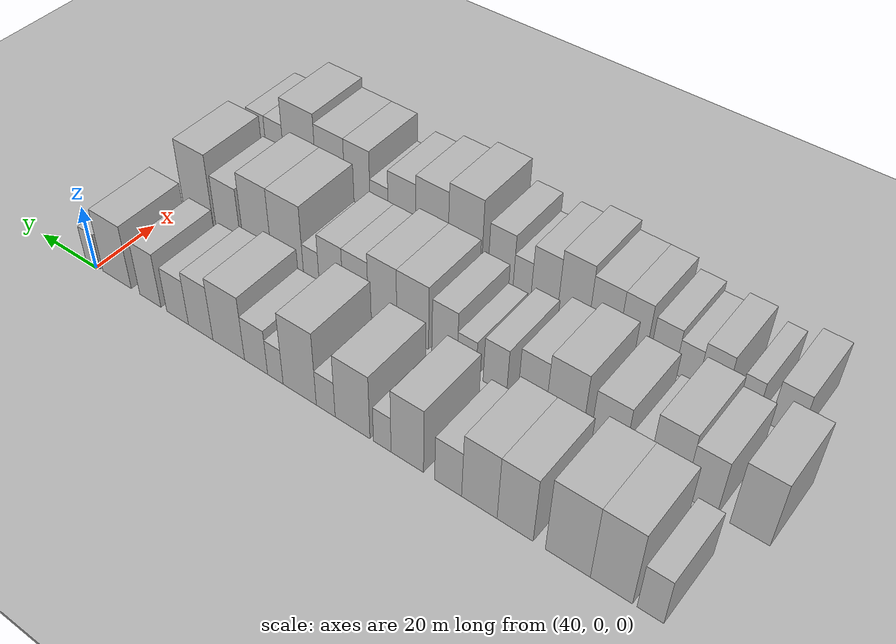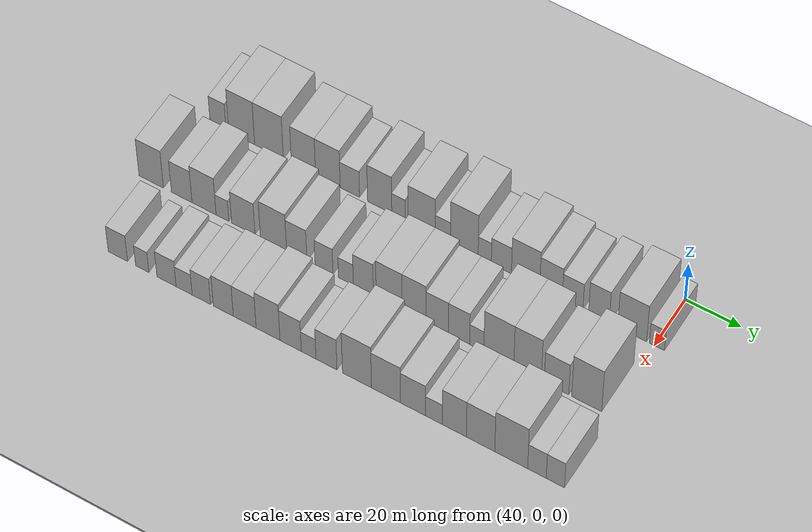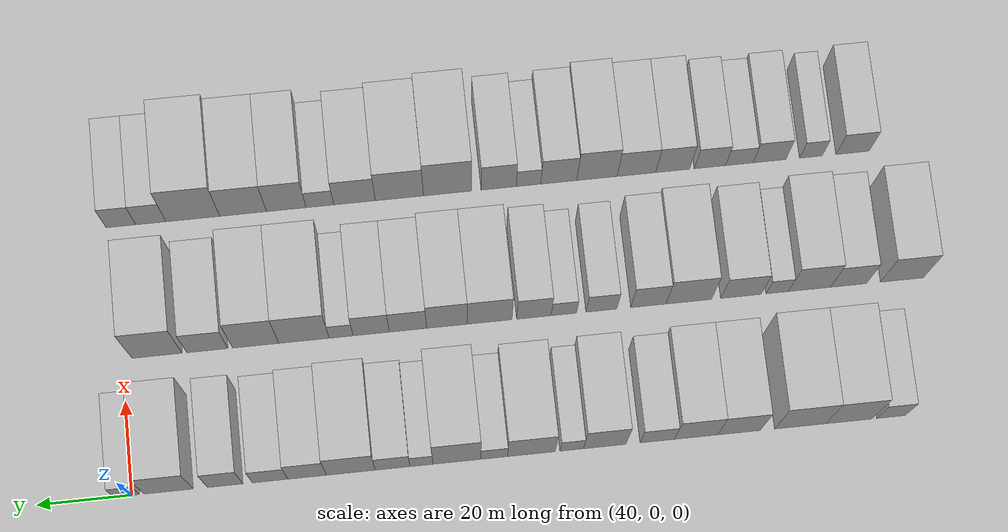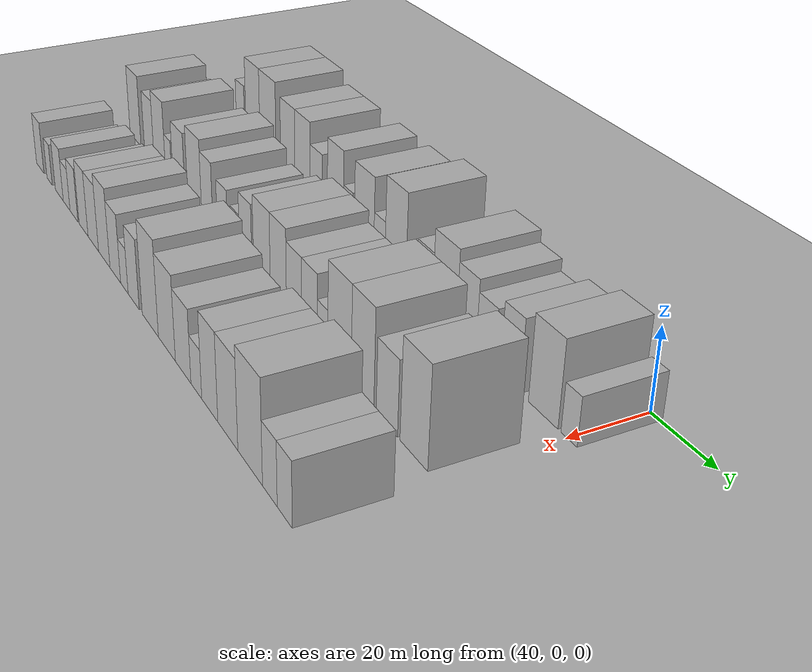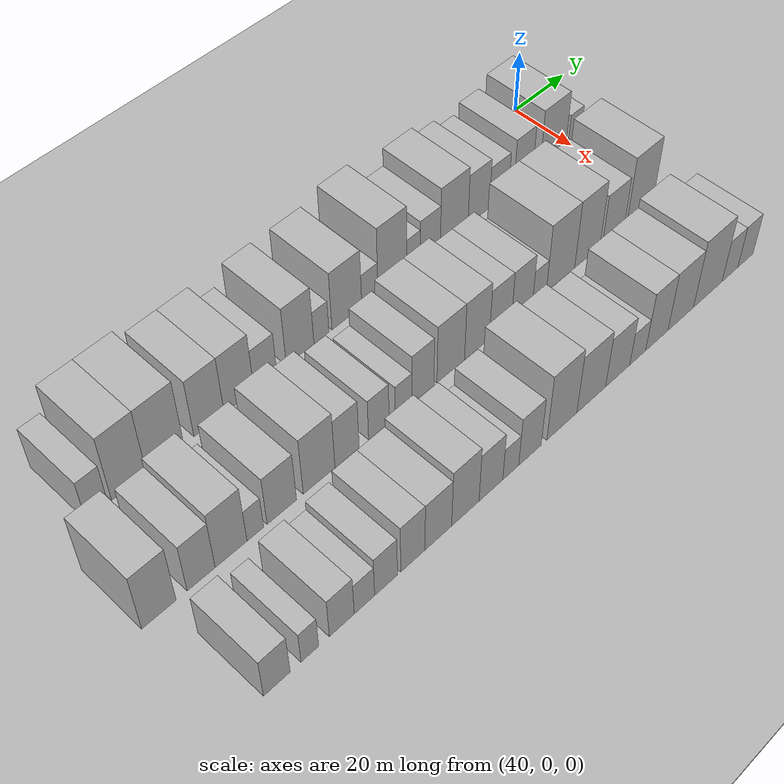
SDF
<sdf version="1.6">
 <world name="default">
  <include><name>ground_plane_1</name><uri>model://HANNAS_ground_plane</uri></include>
  <include>
   <name>ground_plane_2</name>
   <uri>model://HANNAS_ground_plane</uri>
   <pose>100 0 0  0 0 0</pose>
  </include>
  <model name="building_21">
   <static>1</static>
   <pose>50.0000 -159.9730 0 0.000000 0.000000 0.000000</pose>
   <link name="link">
    <pose>0 0 7.50 0 0 0</pose>
    <collision name="collision"><geometry><box><size>20.0000 6.0848 15.0000</size></box></geometry></collision>
    <visual name="visual">
     <cast_shadows>0</cast_shadows>
     <geometry><box><size>20.0000 6.0848 15.0000</size></box></geometry>
     <material>
      <script>
       <uri>model://HANNAS_wall/materials/scripts</uri>
       <uri>model://HANNAS_wall/materials/textures</uri>
       <name>vrc/HANNAS_wall</name>
      </script>
     </material>
    </visual>
   </link>
  </model>
  <model name="building_22">
   <static>1</static>
   <pose>50.0000 -151.0170 0 0.000000 0.000000 0.000000</pose>
   <link name="link">
    <pose>0 0 12.00 0 0 0</pose>
    <collision name="collision"><geometry><box><size>20.0000 9.8271 24.0000</size></box></geometry></collision>
    <visual name="visual">
     <cast_shadows>0</cast_shadows>
     <geometry><box><size>20.0000 9.8271 24.0000</size></box></geometry>
     <material>
      <script>
       <uri>model://HANNAS_wall/materials/scripts</uri>
       <uri>model://HANNAS_wall/materials/textures</uri>
       <name>vrc/HANNAS_wall</name>
      </script>
     </material>
    </visual>
   </link>
  </model>
  <model name="building_23">
   <static>1</static>
   <pose>50.0000 -140.6810 0 0.000000 0.000000 0.000000</pose>
   <link name="link">
    <pose>0 0 12.00 0 0 0</pose>
    <collision name="collision"><geometry><box><size>20.0000 10.8451 24.0000</size></box></geometry></collision>
    <visual name="visual">
     <cast_shadows>0</cast_shadows>
     <geometry><box><size>20.0000 10.8451 24.0000</size></box></geometry>
     <material>
      <script>
       <uri>model://HANNAS_wall/materials/scripts</uri>
       <uri>model://HANNAS_wall/materials/textures</uri>
       <name>vrc/HANNAS_wall</name>
      </script>
     </material>
    </visual>
   </link>
  </model>
  <model name="building_24">
   <static>1</static>
   <pose>50.0000 -127.7165 0 0.000000 0.000000 0.000000</pose>
   <link name="link">
    <pose>0 0 10.50 0 0 0</pose>
    <collision name="collision"><geometry><box><size>20.0000 9.0838 21.0000</size></box></geometry></collision>
    <visual name="visual">
     <cast_shadows>0</cast_shadows>
     <geometry><box><size>20.0000 9.0838 21.0000</size></box></geometry>
     <material>
      <script>
       <uri>model://HANNAS_wall/materials/scripts</uri>
       <uri>model://HANNAS_wall/materials/textures</uri>
       <name>vrc/HANNAS_wall</name>
      </script>
     </material>
    </visual>
   </link>
  </model>
  <model name="building_25">
   <static>1</static>
   <pose>50.0000 -118.5763 0 0.000000 0.000000 0.000000</pose>
   <link name="link">
    <pose>0 0 10.50 0 0 0</pose>
    <collision name="collision"><geometry><box><size>20.0000 9.1967 21.0000</size></box></geometry></collision>
    <visual name="visual">
     <cast_shadows>0</cast_shadows>
     <geometry><box><size>20.0000 9.1967 21.0000</size></box></geometry>
     <material>
      <script>
       <uri>model://HANNAS_wall/materials/scripts</uri>
       <uri>model://HANNAS_wall/materials/textures</uri>
       <name>vrc/HANNAS_wall</name>
      </script>
     </material>
    </visual>
   </link>
  </model>
  <model name="building_26">
   <static>1</static>
   <pose>50.0000 -110.3898 0 0.000000 0.000000 0.000000</pose>
   <link name="link">
    <pose>0 0 7.50 0 0 0</pose>
    <collision name="collision"><geometry><box><size>20.0000 7.1761 15.0000</size></box></geometry></collision>
    <visual name="visual">
     <cast_shadows>0</cast_shadows>
     <geometry><box><size>20.0000 7.1761 15.0000</size></box></geometry>
     <material>
      <script>
       <uri>model://HANNAS_wall/materials/scripts</uri>
       <uri>model://HANNAS_wall/materials/textures</uri>
       <name>vrc/HANNAS_wall</name>
      </script>
     </material>
    </visual>
   </link>
  </model>
  <model name="building_27">
   <static>1</static>
   <pose>50.0000 -99.3260 0 0.000000 0.000000 0.000000</pose>
   <link name="link">
    <pose>0 0 10.50 0 0 0</pose>
    <collision name="collision"><geometry><box><size>20.0000 8.9515 21.0000</size></box></geometry></collision>
    <visual name="visual">
     <cast_shadows>0</cast_shadows>
     <geometry><box><size>20.0000 8.9515 21.0000</size></box></geometry>
     <material>
      <script>
       <uri>model://HANNAS_wall/materials/scripts</uri>
       <uri>model://HANNAS_wall/materials/textures</uri>
       <name>vrc/HANNAS_wall</name>
      </script>
     </material>
    </visual>
   </link>
  </model>
  <model name="building_28">
   <static>1</static>
   <pose>50.0000 -92.3775 0 0.000000 0.000000 0.000000</pose>
   <link name="link">
    <pose>0 0 6.00 0 0 0</pose>
    <collision name="collision"><geometry><box><size>20.0000 4.9455 12.0000</size></box></geometry></collision>
    <visual name="visual">
     <cast_shadows>0</cast_shadows>
     <geometry><box><size>20.0000 4.9455 12.0000</size></box></geometry>
     <material>
      <script>
       <uri>model://HANNAS_wall/materials/scripts</uri>
       <uri>model://HANNAS_wall/materials/textures</uri>
       <name>vrc/HANNAS_wall</name>
      </script>
     </material>
    </visual>
   </link>
  </model>
  <model name="building_29">
   <static>1</static>
   <pose>50.0000 -83.8792 0 0.000000 0.000000 0.000000</pose>
   <link name="link">
    <pose>0 0 10.50 0 0 0</pose>
    <collision name="collision"><geometry><box><size>20.0000 10.0511 21.0000</size></box></geometry></collision>
    <visual name="visual">
     <cast_shadows>0</cast_shadows>
     <geometry><box><size>20.0000 10.0511 21.0000</size></box></geometry>
     <material>
      <script>
       <uri>model://HANNAS_wall/materials/scripts</uri>
       <uri>model://HANNAS_wall/materials/textures</uri>
       <name>vrc/HANNAS_wall</name>
      </script>
     </material>
    </visual>
   </link>
  </model>
  <model name="building_30">
   <static>1</static>
   <pose>50.0000 -76.0548 0 0.000000 0.000000 0.000000</pose>
   <link name="link">
    <pose>0 0 6.00 0 0 0</pose>
    <collision name="collision"><geometry><box><size>20.0000 5.5977 12.0000</size></box></geometry></collision>
    <visual name="visual">
     <cast_shadows>0</cast_shadows>
     <geometry><box><size>20.0000 5.5977 12.0000</size></box></geometry>
     <material>
      <script>
       <uri>model://HANNAS_wall/materials/scripts</uri>
       <uri>model://HANNAS_wall/materials/textures</uri>
       <name>vrc/HANNAS_wall</name>
      </script>
     </material>
    </visual>
   </link>
  </model>
  <model name="building_31">
   <static>1</static>
   <pose>50.0000 -68.2252 0 0.000000 0.000000 0.000000</pose>
   <link name="link">
    <pose>0 0 12.00 0 0 0</pose>
    <collision name="collision"><geometry><box><size>20.0000 10.0615 24.0000</size></box></geometry></collision>
    <visual name="visual">
     <cast_shadows>0</cast_shadows>
     <geometry><box><size>20.0000 10.0615 24.0000</size></box></geometry>
     <material>
      <script>
       <uri>model://HANNAS_wall/materials/scripts</uri>
       <uri>model://HANNAS_wall/materials/textures</uri>
       <name>vrc/HANNAS_wall</name>
      </script>
     </material>
    </visual>
   </link>
  </model>
  <model name="building_32">
   <static>1</static>
   <pose>50.0000 -60.7939 0 0.000000 0.000000 0.000000</pose>
   <link name="link">
    <pose>0 0 6.00 0 0 0</pose>
    <collision name="collision"><geometry><box><size>20.0000 4.8011 12.0000</size></box></geometry></collision>
    <visual name="visual">
     <cast_shadows>0</cast_shadows>
     <geometry><box><size>20.0000 4.8011 12.0000</size></box></geometry>
     <material>
      <script>
       <uri>model://HANNAS_wall/materials/scripts</uri>
       <uri>model://HANNAS_wall/materials/textures</uri>
       <name>vrc/HANNAS_wall</name>
      </script>
     </material>
    </visual>
   </link>
  </model>
  <model name="building_33">
   <static>1</static>
   <pose>50.0000 -54.7445 0 0.000000 0.000000 0.000000</pose>
   <link name="link">
    <pose>0 0 7.50 0 0 0</pose>
    <collision name="collision"><geometry><box><size>20.0000 7.2978 15.0000</size></box></geometry></collision>
    <visual name="visual">
     <cast_shadows>0</cast_shadows>
     <geometry><box><size>20.0000 7.2978 15.0000</size></box></geometry>
     <material>
      <script>
       <uri>model://HANNAS_wall/materials/scripts</uri>
       <uri>model://HANNAS_wall/materials/textures</uri>
       <name>vrc/HANNAS_wall</name>
      </script>
     </material>
    </visual>
   </link>
  </model>
  <model name="building_34">
   <static>1</static>
   <pose>50.0000 -45.9717 0 0.000000 0.000000 0.000000</pose>
   <link name="link">
    <pose>0 0 10.50 0 0 0</pose>
    <collision name="collision"><geometry><box><size>20.0000 10.2478 21.0000</size></box></geometry></collision>
    <visual name="visual">
     <cast_shadows>0</cast_shadows>
     <geometry><box><size>20.0000 10.2478 21.0000</size></box></geometry>
     <material>
      <script>
       <uri>model://HANNAS_wall/materials/scripts</uri>
       <uri>model://HANNAS_wall/materials/textures</uri>
       <name>vrc/HANNAS_wall</name>
      </script>
     </material>
    </visual>
   </link>
  </model>
  <model name="building_35">
   <static>1</static>
   <pose>50.0000 -36.7895 0 0.000000 0.000000 0.000000</pose>
   <link name="link">
    <pose>0 0 9.00 0 0 0</pose>
    <collision name="collision"><geometry><box><size>20.0000 8.1166 18.0000</size></box></geometry></collision>
    <visual name="visual">
     <cast_shadows>0</cast_shadows>
     <geometry><box><size>20.0000 8.1166 18.0000</size></box></geometry>
     <material>
      <script>
       <uri>model://HANNAS_wall/materials/scripts</uri>
       <uri>model://HANNAS_wall/materials/textures</uri>
       <name>vrc/HANNAS_wall</name>
      </script>
     </material>
    </visual>
   </link>
  </model>
  <model name="building_36">
   <static>1</static>
   <pose>50.0000 -29.0209 0 0.000000 0.000000 0.000000</pose>
   <link name="link">
    <pose>0 0 7.50 0 0 0</pose>
    <collision name="collision"><geometry><box><size>20.0000 7.4207 15.0000</size></box></geometry></collision>
    <visual name="visual">
     <cast_shadows>0</cast_shadows>
     <geometry><box><size>20.0000 7.4207 15.0000</size></box></geometry>
     <material>
      <script>
       <uri>model://HANNAS_wall/materials/scripts</uri>
       <uri>model://HANNAS_wall/materials/textures</uri>
       <name>vrc/HANNAS_wall</name>
      </script>
     </material>
    </visual>
   </link>
  </model>
  <model name="building_37">
   <static>1</static>
   <pose>50.0000 -19.6073 0 0.000000 0.000000 0.000000</pose>
   <link name="link">
    <pose>0 0 9.00 0 0 0</pose>
    <collision name="collision"><geometry><box><size>20.0000 7.4065 18.0000</size></box></geometry></collision>
    <visual name="visual">
     <cast_shadows>0</cast_shadows>
     <geometry><box><size>20.0000 7.4065 18.0000</size></box></geometry>
     <material>
      <script>
       <uri>model://HANNAS_wall/materials/scripts</uri>
       <uri>model://HANNAS_wall/materials/textures</uri>
       <name>vrc/HANNAS_wall</name>
      </script>
     </material>
    </visual>
   </link>
  </model>
  <model name="building_38">
   <static>1</static>
   <pose>50.0000 -7.7778 0 0.000000 0.000000 0.000000</pose>
   <link name="link">
    <pose>0 0 10.50 0 0 0</pose>
    <collision name="collision"><geometry><box><size>20.0000 10.2526 21.0000</size></box></geometry></collision>
    <visual name="visual">
     <cast_shadows>0</cast_shadows>
     <geometry><box><size>20.0000 10.2526 21.0000</size></box></geometry>
     <material>
      <script>
       <uri>model://HANNAS_wall/materials/scripts</uri>
       <uri>model://HANNAS_wall/materials/textures</uri>
       <name>vrc/HANNAS_wall</name>
      </script>
     </material>
    </visual>
   </link>
  </model>
  <model name="building_39">
   <static>1</static>
   <pose>50.0000 1.0077 0 0.000000 0.000000 0.000000</pose>
   <link name="link">
    <pose>0 0 6.00 0 0 0</pose>
    <collision name="collision"><geometry><box><size>20.0000 5.3183 12.0000</size></box></geometry></collision>
    <visual name="visual">
     <cast_shadows>0</cast_shadows>
     <geometry><box><size>20.0000 5.3183 12.0000</size></box></geometry>
     <material>
      <script>
       <uri>model://HANNAS_wall/materials/scripts</uri>
       <uri>model://HANNAS_wall/materials/textures</uri>
       <name>vrc/HANNAS_wall</name>
      </script>
     </material>
    </visual>
   </link>
  </model>
  <model name="building_96">
   <static>1</static>
   <pose>79.0000 -166.5685 0 0.000000 0.000000 0.000000</pose>
   <link name="link">
    <pose>0 0 10.50 0 0 0</pose>
    <collision name="collision"><geometry><box><size>20.0000 9.2557 21.0000</size></box></geometry></collision>
    <visual name="visual">
     <cast_shadows>0</cast_shadows>
     <geometry><box><size>20.0000 9.2557 21.0000</size></box></geometry>
     <material>
      <script>
       <uri>model://HANNAS_wall/materials/scripts</uri>
       <uri>model://HANNAS_wall/materials/textures</uri>
       <name>vrc/HANNAS_wall</name>
      </script>
     </material>
    </visual>
   </link>
  </model>
  <model name="building_97">
   <static>1</static>
   <pose>79.0000 -155.0542 0 0.000000 0.000000 0.000000</pose>
   <link name="link">
    <pose>0 0 9.00 0 0 0</pose>
    <collision name="collision"><geometry><box><size>20.0000 7.7730 18.0000</size></box></geometry></collision>
    <visual name="visual">
     <cast_shadows>0</cast_shadows>
     <geometry><box><size>20.0000 7.7730 18.0000</size></box></geometry>
     <material>
      <script>
       <uri>model://HANNAS_wall/materials/scripts</uri>
       <uri>model://HANNAS_wall/materials/textures</uri>
       <name>vrc/HANNAS_wall</name>
      </script>
     </material>
    </visual>
   </link>
  </model>
  <model name="building_98">
   <static>1</static>
   <pose>79.0000 -146.6459 0 0.000000 0.000000 0.000000</pose>
   <link name="link">
    <pose>0 0 10.50 0 0 0</pose>
    <collision name="collision"><geometry><box><size>20.0000 9.0435 21.0000</size></box></geometry></collision>
    <visual name="visual">
     <cast_shadows>0</cast_shadows>
     <geometry><box><size>20.0000 9.0435 21.0000</size></box></geometry>
     <material>
      <script>
       <uri>model://HANNAS_wall/materials/scripts</uri>
       <uri>model://HANNAS_wall/materials/textures</uri>
       <name>vrc/HANNAS_wall</name>
      </script>
     </material>
    </visual>
   </link>
  </model>
  <model name="building_99">
   <static>1</static>
   <pose>79.0000 -139.7184 0 0.000000 0.000000 0.000000</pose>
   <link name="link">
    <pose>0 0 6.00 0 0 0</pose>
    <collision name="collision"><geometry><box><size>20.0000 4.8115 12.0000</size></box></geometry></collision>
    <visual name="visual">
     <cast_shadows>0</cast_shadows>
     <geometry><box><size>20.0000 4.8115 12.0000</size></box></geometry>
     <material>
      <script>
       <uri>model://HANNAS_wall/materials/scripts</uri>
       <uri>model://HANNAS_wall/materials/textures</uri>
       <name>vrc/HANNAS_wall</name>
      </script>
     </material>
    </visual>
   </link>
  </model>
  <model name="building_100">
   <static>1</static>
   <pose>79.0000 -131.9504 0 0.000000 0.000000 0.000000</pose>
   <link name="link">
    <pose>0 0 9.00 0 0 0</pose>
    <collision name="collision"><geometry><box><size>20.0000 8.7246 18.0000</size></box></geometry></collision>
    <visual name="visual">
     <cast_shadows>0</cast_shadows>
     <geometry><box><size>20.0000 8.7246 18.0000</size></box></geometry>
     <material>
      <script>
       <uri>model://HANNAS_wall/materials/scripts</uri>
       <uri>model://HANNAS_wall/materials/textures</uri>
       <name>vrc/HANNAS_wall</name>
      </script>
     </material>
    </visual>
   </link>
  </model>
  <model name="building_101">
   <static>1</static>
   <pose>79.0000 -120.7301 0 0.000000 0.000000 0.000000</pose>
   <link name="link">
    <pose>0 0 10.50 0 0 0</pose>
    <collision name="collision"><geometry><box><size>20.0000 9.7162 21.0000</size></box></geometry></collision>
    <visual name="visual">
     <cast_shadows>0</cast_shadows>
     <geometry><box><size>20.0000 9.7162 21.0000</size></box></geometry>
     <material>
      <script>
       <uri>model://HANNAS_wall/materials/scripts</uri>
       <uri>model://HANNAS_wall/materials/textures</uri>
       <name>vrc/HANNAS_wall</name>
      </script>
     </material>
    </visual>
   </link>
  </model>
  <model name="building_102">
   <static>1</static>
   <pose>79.0000 -112.0959 0 0.000000 0.000000 0.000000</pose>
   <link name="link">
    <pose>0 0 9.00 0 0 0</pose>
    <collision name="collision"><geometry><box><size>20.0000 7.5521 18.0000</size></box></geometry></collision>
    <visual name="visual">
     <cast_shadows>0</cast_shadows>
     <geometry><box><size>20.0000 7.5521 18.0000</size></box></geometry>
     <material>
      <script>
       <uri>model://HANNAS_wall/materials/scripts</uri>
       <uri>model://HANNAS_wall/materials/textures</uri>
       <name>vrc/HANNAS_wall</name>
      </script>
     </material>
    </visual>
   </link>
  </model>
  <model name="building_103">
   <static>1</static>
   <pose>79.0000 -102.0207 0 0.000000 0.000000 0.000000</pose>
   <link name="link">
    <pose>0 0 7.50 0 0 0</pose>
    <collision name="collision"><geometry><box><size>20.0000 6.5983 15.0000</size></box></geometry></collision>
    <visual name="visual">
     <cast_shadows>0</cast_shadows>
     <geometry><box><size>20.0000 6.5983 15.0000</size></box></geometry>
     <material>
      <script>
       <uri>model://HANNAS_wall/materials/scripts</uri>
       <uri>model://HANNAS_wall/materials/textures</uri>
       <name>vrc/HANNAS_wall</name>
      </script>
     </material>
    </visual>
   </link>
  </model>
  <model name="building_104">
   <static>1</static>
   <pose>79.0000 -93.9938 0 0.000000 0.000000 0.000000</pose>
   <link name="link">
    <pose>0 0 6.00 0 0 0</pose>
    <collision name="collision"><geometry><box><size>20.0000 5.4555 12.0000</size></box></geometry></collision>
    <visual name="visual">
     <cast_shadows>0</cast_shadows>
     <geometry><box><size>20.0000 5.4555 12.0000</size></box></geometry>
     <material>
      <script>
       <uri>model://HANNAS_wall/materials/scripts</uri>
       <uri>model://HANNAS_wall/materials/textures</uri>
       <name>vrc/HANNAS_wall</name>
      </script>
     </material>
    </visual>
   </link>
  </model>
  <model name="building_105">
   <static>1</static>
   <pose>79.0000 -87.5949 0 0.000000 0.000000 0.000000</pose>
   <link name="link">
    <pose>0 0 9.00 0 0 0</pose>
    <collision name="collision"><geometry><box><size>20.0000 7.3423 18.0000</size></box></geometry></collision>
    <visual name="visual">
     <cast_shadows>0</cast_shadows>
     <geometry><box><size>20.0000 7.3423 18.0000</size></box></geometry>
     <material>
      <script>
       <uri>model://HANNAS_wall/materials/scripts</uri>
       <uri>model://HANNAS_wall/materials/textures</uri>
       <name>vrc/HANNAS_wall</name>
      </script>
     </material>
    </visual>
   </link>
  </model>
  <model name="building_106">
   <static>1</static>
   <pose>79.0000 -78.1845 0 0.000000 0.000000 0.000000</pose>
   <link name="link">
    <pose>0 0 10.50 0 0 0</pose>
    <collision name="collision"><geometry><box><size>20.0000 9.4783 21.0000</size></box></geometry></collision>
    <visual name="visual">
     <cast_shadows>0</cast_shadows>
     <geometry><box><size>20.0000 9.4783 21.0000</size></box></geometry>
     <material>
      <script>
       <uri>model://HANNAS_wall/materials/scripts</uri>
       <uri>model://HANNAS_wall/materials/textures</uri>
       <name>vrc/HANNAS_wall</name>
      </script>
     </material>
    </visual>
   </link>
  </model>
  <model name="building_107">
   <static>1</static>
   <pose>79.0000 -69.0837 0 0.000000 0.000000 0.000000</pose>
   <link name="link">
    <pose>0 0 10.50 0 0 0</pose>
    <collision name="collision"><geometry><box><size>20.0000 8.7234 21.0000</size></box></geometry></collision>
    <visual name="visual">
     <cast_shadows>0</cast_shadows>
     <geometry><box><size>20.0000 8.7234 21.0000</size></box></geometry>
     <material>
      <script>
       <uri>model://HANNAS_wall/materials/scripts</uri>
       <uri>model://HANNAS_wall/materials/textures</uri>
       <name>vrc/HANNAS_wall</name>
      </script>
     </material>
    </visual>
   </link>
  </model>
  <model name="building_108">
   <static>1</static>
   <pose>79.0000 -60.7558 0 0.000000 0.000000 0.000000</pose>
   <link name="link">
    <pose>0 0 9.00 0 0 0</pose>
    <collision name="collision"><geometry><box><size>20.0000 7.9325 18.0000</size></box></geometry></collision>
    <visual name="visual">
     <cast_shadows>0</cast_shadows>
     <geometry><box><size>20.0000 7.9325 18.0000</size></box></geometry>
     <material>
      <script>
       <uri>model://HANNAS_wall/materials/scripts</uri>
       <uri>model://HANNAS_wall/materials/textures</uri>
       <name>vrc/HANNAS_wall</name>
      </script>
     </material>
    </visual>
   </link>
  </model>
  <model name="building_109">
   <static>1</static>
   <pose>79.0000 -52.9318 0 0.000000 0.000000 0.000000</pose>
   <link name="link">
    <pose>0 0 9.00 0 0 0</pose>
    <collision name="collision"><geometry><box><size>20.0000 7.7155 18.0000</size></box></geometry></collision>
    <visual name="visual">
     <cast_shadows>0</cast_shadows>
     <geometry><box><size>20.0000 7.7155 18.0000</size></box></geometry>
     <material>
      <script>
       <uri>model://HANNAS_wall/materials/scripts</uri>
       <uri>model://HANNAS_wall/materials/textures</uri>
       <name>vrc/HANNAS_wall</name>
      </script>
     </material>
    </visual>
   </link>
  </model>
  <model name="building_110">
   <static>1</static>
   <pose>79.0000 -46.5285 0 0.000000 0.000000 0.000000</pose>
   <link name="link">
    <pose>0 0 6.00 0 0 0</pose>
    <collision name="collision"><geometry><box><size>20.0000 5.0912 12.0000</size></box></geometry></collision>
    <visual name="visual">
     <cast_shadows>0</cast_shadows>
     <geometry><box><size>20.0000 5.0912 12.0000</size></box></geometry>
     <material>
      <script>
       <uri>model://HANNAS_wall/materials/scripts</uri>
       <uri>model://HANNAS_wall/materials/textures</uri>
       <name>vrc/HANNAS_wall</name>
      </script>
     </material>
    </visual>
   </link>
  </model>
  <model name="building_111">
   <static>1</static>
   <pose>79.0000 -38.6144 0 0.000000 0.000000 0.000000</pose>
   <link name="link">
    <pose>0 0 12.00 0 0 0</pose>
    <collision name="collision"><geometry><box><size>20.0000 10.7369 24.0000</size></box></geometry></collision>
    <visual name="visual">
     <cast_shadows>0</cast_shadows>
     <geometry><box><size>20.0000 10.7369 24.0000</size></box></geometry>
     <material>
      <script>
       <uri>model://HANNAS_wall/materials/scripts</uri>
       <uri>model://HANNAS_wall/materials/textures</uri>
       <name>vrc/HANNAS_wall</name>
      </script>
     </material>
    </visual>
   </link>
  </model>
  <model name="building_112">
   <static>1</static>
   <pose>79.0000 -28.3461 0 0.000000 0.000000 0.000000</pose>
   <link name="link">
    <pose>0 0 12.00 0 0 0</pose>
    <collision name="collision"><geometry><box><size>20.0000 9.7996 24.0000</size></box></geometry></collision>
    <visual name="visual">
     <cast_shadows>0</cast_shadows>
     <geometry><box><size>20.0000 9.7996 24.0000</size></box></geometry>
     <material>
      <script>
       <uri>model://HANNAS_wall/materials/scripts</uri>
       <uri>model://HANNAS_wall/materials/textures</uri>
       <name>vrc/HANNAS_wall</name>
      </script>
     </material>
    </visual>
   </link>
  </model>
  <model name="building_113">
   <static>1</static>
   <pose>79.0000 -18.0942 0 0.000000 0.000000 0.000000</pose>
   <link name="link">
    <pose>0 0 9.00 0 0 0</pose>
    <collision name="collision"><geometry><box><size>20.0000 8.7042 18.0000</size></box></geometry></collision>
    <visual name="visual">
     <cast_shadows>0</cast_shadows>
     <geometry><box><size>20.0000 8.7042 18.0000</size></box></geometry>
     <material>
      <script>
       <uri>model://HANNAS_wall/materials/scripts</uri>
       <uri>model://HANNAS_wall/materials/textures</uri>
       <name>vrc/HANNAS_wall</name>
      </script>
     </material>
    </visual>
   </link>
  </model>
  <model name="building_114">
   <static>1</static>
   <pose>79.0000 -7.4302 0 0.000000 0.000000 0.000000</pose>
   <link name="link">
    <pose>0 0 12.00 0 0 0</pose>
    <collision name="collision"><geometry><box><size>20.0000 10.6237 24.0000</size></box></geometry></collision>
    <visual name="visual">
     <cast_shadows>0</cast_shadows>
     <geometry><box><size>20.0000 10.6237 24.0000</size></box></geometry>
     <material>
      <script>
       <uri>model://HANNAS_wall/materials/scripts</uri>
       <uri>model://HANNAS_wall/materials/textures</uri>
       <name>vrc/HANNAS_wall</name>
      </script>
     </material>
    </visual>
   </link>
  </model>
  <model name="building_175">
   <static>1</static>
   <pose>108.0000 -160.0708 0 0.000000 0.000000 0.000000</pose>
   <link name="link">
    <pose>0 0 7.50 0 0 0</pose>
    <collision name="collision"><geometry><box><size>20.0000 7.2686 15.0000</size></box></geometry></collision>
    <visual name="visual">
     <cast_shadows>0</cast_shadows>
     <geometry><box><size>20.0000 7.2686 15.0000</size></box></geometry>
     <material>
      <script>
       <uri>model://HANNAS_wall/materials/scripts</uri>
       <uri>model://HANNAS_wall/materials/textures</uri>
       <name>vrc/HANNAS_wall</name>
      </script>
     </material>
    </visual>
   </link>
  </model>
  <model name="building_176">
   <static>1</static>
   <pose>108.0000 -150.9664 0 0.000000 0.000000 0.000000</pose>
   <link name="link">
    <pose>0 0 6.00 0 0 0</pose>
    <collision name="collision"><geometry><box><size>20.0000 4.9401 12.0000</size></box></geometry></collision>
    <visual name="visual">
     <cast_shadows>0</cast_shadows>
     <geometry><box><size>20.0000 4.9401 12.0000</size></box></geometry>
     <material>
      <script>
       <uri>model://HANNAS_wall/materials/scripts</uri>
       <uri>model://HANNAS_wall/materials/textures</uri>
       <name>vrc/HANNAS_wall</name>
      </script>
     </material>
    </visual>
   </link>
  </model>
  <model name="building_177">
   <static>1</static>
   <pose>108.0000 -141.9203 0 0.000000 0.000000 0.000000</pose>
   <link name="link">
    <pose>0 0 7.50 0 0 0</pose>
    <collision name="collision"><geometry><box><size>20.0000 7.1522 15.0000</size></box></geometry></collision>
    <visual name="visual">
     <cast_shadows>0</cast_shadows>
     <geometry><box><size>20.0000 7.1522 15.0000</size></box></geometry>
     <material>
      <script>
       <uri>model://HANNAS_wall/materials/scripts</uri>
       <uri>model://HANNAS_wall/materials/textures</uri>
       <name>vrc/HANNAS_wall</name>
      </script>
     </material>
    </visual>
   </link>
  </model>
  <model name="building_178">
   <static>1</static>
   <pose>108.0000 -135.3606 0 0.000000 0.000000 0.000000</pose>
   <link name="link">
    <pose>0 0 6.00 0 0 0</pose>
    <collision name="collision"><geometry><box><size>20.0000 5.9671 12.0000</size></box></geometry></collision>
    <visual name="visual">
     <cast_shadows>0</cast_shadows>
     <geometry><box><size>20.0000 5.9671 12.0000</size></box></geometry>
     <material>
      <script>
       <uri>model://HANNAS_wall/materials/scripts</uri>
       <uri>model://HANNAS_wall/materials/textures</uri>
       <name>vrc/HANNAS_wall</name>
      </script>
     </material>
    </visual>
   </link>
  </model>
  <model name="building_179">
   <static>1</static>
   <pose>108.0000 -128.9719 0 0.000000 0.000000 0.000000</pose>
   <link name="link">
    <pose>0 0 7.50 0 0 0</pose>
    <collision name="collision"><geometry><box><size>20.0000 6.8103 15.0000</size></box></geometry></collision>
    <visual name="visual">
     <cast_shadows>0</cast_shadows>
     <geometry><box><size>20.0000 6.8103 15.0000</size></box></geometry>
     <material>
      <script>
       <uri>model://HANNAS_wall/materials/scripts</uri>
       <uri>model://HANNAS_wall/materials/textures</uri>
       <name>vrc/HANNAS_wall</name>
      </script>
     </material>
    </visual>
   </link>
  </model>
  <model name="building_180">
   <static>1</static>
   <pose>108.0000 -120.8729 0 0.000000 0.000000 0.000000</pose>
   <link name="link">
    <pose>0 0 9.00 0 0 0</pose>
    <collision name="collision"><geometry><box><size>20.0000 7.3879 18.0000</size></box></geometry></collision>
    <visual name="visual">
     <cast_shadows>0</cast_shadows>
     <geometry><box><size>20.0000 7.3879 18.0000</size></box></geometry>
     <material>
      <script>
       <uri>model://HANNAS_wall/materials/scripts</uri>
       <uri>model://HANNAS_wall/materials/textures</uri>
       <name>vrc/HANNAS_wall</name>
      </script>
     </material>
    </visual>
   </link>
  </model>
  <model name="building_181">
   <static>1</static>
   <pose>108.0000 -112.9927 0 0.000000 0.000000 0.000000</pose>
   <link name="link">
    <pose>0 0 9.00 0 0 0</pose>
    <collision name="collision"><geometry><box><size>20.0000 8.3724 18.0000</size></box></geometry></collision>
    <visual name="visual">
     <cast_shadows>0</cast_shadows>
     <geometry><box><size>20.0000 8.3724 18.0000</size></box></geometry>
     <material>
      <script>
       <uri>model://HANNAS_wall/materials/scripts</uri>
       <uri>model://HANNAS_wall/materials/textures</uri>
       <name>vrc/HANNAS_wall</name>
      </script>
     </material>
    </visual>
   </link>
  </model>
  <model name="building_182">
   <static>1</static>
   <pose>108.0000 -104.4354 0 0.000000 0.000000 0.000000</pose>
   <link name="link">
    <pose>0 0 10.50 0 0 0</pose>
    <collision name="collision"><geometry><box><size>20.0000 8.7422 21.0000</size></box></geometry></collision>
    <visual name="visual">
     <cast_shadows>0</cast_shadows>
     <geometry><box><size>20.0000 8.7422 21.0000</size></box></geometry>
     <material>
      <script>
       <uri>model://HANNAS_wall/materials/scripts</uri>
       <uri>model://HANNAS_wall/materials/textures</uri>
       <name>vrc/HANNAS_wall</name>
      </script>
     </material>
    </visual>
   </link>
  </model>
  <model name="building_183">
   <static>1</static>
   <pose>108.0000 -96.1667 0 0.000000 0.000000 0.000000</pose>
   <link name="link">
    <pose>0 0 9.00 0 0 0</pose>
    <collision name="collision"><geometry><box><size>20.0000 7.7953 18.0000</size></box></geometry></collision>
    <visual name="visual">
     <cast_shadows>0</cast_shadows>
     <geometry><box><size>20.0000 7.7953 18.0000</size></box></geometry>
     <material>
      <script>
       <uri>model://HANNAS_wall/materials/scripts</uri>
       <uri>model://HANNAS_wall/materials/textures</uri>
       <name>vrc/HANNAS_wall</name>
      </script>
     </material>
    </visual>
   </link>
  </model>
  <model name="building_184">
   <static>1</static>
   <pose>108.0000 -89.6130 0 0.000000 0.000000 0.000000</pose>
   <link name="link">
    <pose>0 0 6.00 0 0 0</pose>
    <collision name="collision"><geometry><box><size>20.0000 5.3121 12.0000</size></box></geometry></collision>
    <visual name="visual">
     <cast_shadows>0</cast_shadows>
     <geometry><box><size>20.0000 5.3121 12.0000</size></box></geometry>
     <material>
      <script>
       <uri>model://HANNAS_wall/materials/scripts</uri>
       <uri>model://HANNAS_wall/materials/textures</uri>
       <name>vrc/HANNAS_wall</name>
      </script>
     </material>
    </visual>
   </link>
  </model>
  <model name="building_185">
   <static>1</static>
   <pose>108.0000 -83.1524 0 0.000000 0.000000 0.000000</pose>
   <link name="link">
    <pose>0 0 9.00 0 0 0</pose>
    <collision name="collision"><geometry><box><size>20.0000 7.6091 18.0000</size></box></geometry></collision>
    <visual name="visual">
     <cast_shadows>0</cast_shadows>
     <geometry><box><size>20.0000 7.6091 18.0000</size></box></geometry>
     <material>
      <script>
       <uri>model://HANNAS_wall/materials/scripts</uri>
       <uri>model://HANNAS_wall/materials/textures</uri>
       <name>vrc/HANNAS_wall</name>
      </script>
     </material>
    </visual>
   </link>
  </model>
  <model name="building_186">
   <static>1</static>
   <pose>108.0000 -72.1234 0 0.000000 0.000000 0.000000</pose>
   <link name="link">
    <pose>0 0 12.00 0 0 0</pose>
    <collision name="collision"><geometry><box><size>20.0000 10.4487 24.0000</size></box></geometry></collision>
    <visual name="visual">
     <cast_shadows>0</cast_shadows>
     <geometry><box><size>20.0000 10.4487 24.0000</size></box></geometry>
     <material>
      <script>
       <uri>model://HANNAS_wall/materials/scripts</uri>
       <uri>model://HANNAS_wall/materials/textures</uri>
       <name>vrc/HANNAS_wall</name>
      </script>
     </material>
    </visual>
   </link>
  </model>
  <model name="building_187">
   <static>1</static>
   <pose>108.0000 -61.7121 0 0.000000 0.000000 0.000000</pose>
   <link name="link">
    <pose>0 0 10.50 0 0 0</pose>
    <collision name="collision"><geometry><box><size>20.0000 10.3739 21.0000</size></box></geometry></collision>
    <visual name="visual">
     <cast_shadows>0</cast_shadows>
     <geometry><box><size>20.0000 10.3739 21.0000</size></box></geometry>
     <material>
      <script>
       <uri>model://HANNAS_wall/materials/scripts</uri>
       <uri>model://HANNAS_wall/materials/textures</uri>
       <name>vrc/HANNAS_wall</name>
      </script>
     </material>
    </visual>
   </link>
  </model>
  <model name="building_188">
   <static>1</static>
   <pose>108.0000 -52.0354 0 0.000000 0.000000 0.000000</pose>
   <link name="link">
    <pose>0 0 9.00 0 0 0</pose>
    <collision name="collision"><geometry><box><size>20.0000 8.9794 18.0000</size></box></geometry></collision>
    <visual name="visual">
     <cast_shadows>0</cast_shadows>
     <geometry><box><size>20.0000 8.9794 18.0000</size></box></geometry>
     <material>
      <script>
       <uri>model://HANNAS_wall/materials/scripts</uri>
       <uri>model://HANNAS_wall/materials/textures</uri>
       <name>vrc/HANNAS_wall</name>
      </script>
     </material>
    </visual>
   </link>
  </model>
  <model name="building_189">
   <static>1</static>
   <pose>108.0000 -44.5604 0 0.000000 0.000000 0.000000</pose>
   <link name="link">
    <pose>0 0 6.00 0 0 0</pose>
    <collision name="collision"><geometry><box><size>20.0000 5.9706 12.0000</size></box></geometry></collision>
    <visual name="visual">
     <cast_shadows>0</cast_shadows>
     <geometry><box><size>20.0000 5.9706 12.0000</size></box></geometry>
     <material>
      <script>
       <uri>model://HANNAS_wall/materials/scripts</uri>
       <uri>model://HANNAS_wall/materials/textures</uri>
       <name>vrc/HANNAS_wall</name>
      </script>
     </material>
    </visual>
   </link>
  </model>
  <model name="building_190">
   <static>1</static>
   <pose>108.0000 -37.3067 0 0.000000 0.000000 0.000000</pose>
   <link name="link">
    <pose>0 0 10.50 0 0 0</pose>
    <collision name="collision"><geometry><box><size>20.0000 8.5370 21.0000</size></box></geometry></collision>
    <visual name="visual">
     <cast_shadows>0</cast_shadows>
     <geometry><box><size>20.0000 8.5370 21.0000</size></box></geometry>
     <material>
      <script>
       <uri>model://HANNAS_wall/materials/scripts</uri>
       <uri>model://HANNAS_wall/materials/textures</uri>
       <name>vrc/HANNAS_wall</name>
      </script>
     </material>
    </visual>
   </link>
  </model>
  <model name="building_191">
   <static>1</static>
   <pose>108.0000 -28.0119 0 0.000000 0.000000 0.000000</pose>
   <link name="link">
    <pose>0 0 10.50 0 0 0</pose>
    <collision name="collision"><geometry><box><size>20.0000 10.0527 21.0000</size></box></geometry></collision>
    <visual name="visual">
     <cast_shadows>0</cast_shadows>
     <geometry><box><size>20.0000 10.0527 21.0000</size></box></geometry>
     <material>
      <script>
       <uri>model://HANNAS_wall/materials/scripts</uri>
       <uri>model://HANNAS_wall/materials/textures</uri>
       <name>vrc/HANNAS_wall</name>
      </script>
     </material>
    </visual>
   </link>
  </model>
  <model name="building_192">
   <static>1</static>
   <pose>108.0000 -17.2031 0 0.000000 0.000000 0.000000</pose>
   <link name="link">
    <pose>0 0 12.00 0 0 0</pose>
    <collision name="collision"><geometry><box><size>20.0000 11.5648 24.0000</size></box></geometry></collision>
    <visual name="visual">
     <cast_shadows>0</cast_shadows>
     <geometry><box><size>20.0000 11.5648 24.0000</size></box></geometry>
     <material>
      <script>
       <uri>model://HANNAS_wall/materials/scripts</uri>
       <uri>model://HANNAS_wall/materials/textures</uri>
       <name>vrc/HANNAS_wall</name>
      </script>
     </material>
    </visual>
   </link>
  </model>
  <model name="building_193">
   <static>1</static>
   <pose>108.0000 -8.1681 0 0.000000 0.000000 0.000000</pose>
   <link name="link">
    <pose>0 0 7.50 0 0 0</pose>
    <collision name="collision"><geometry><box><size>20.0000 6.5052 15.0000</size></box></geometry></collision>
    <visual name="visual">
     <cast_shadows>0</cast_shadows>
     <geometry><box><size>20.0000 6.5052 15.0000</size></box></geometry>
     <material>
      <script>
       <uri>model://HANNAS_wall/materials/scripts</uri>
       <uri>model://HANNAS_wall/materials/textures</uri>
       <name>vrc/HANNAS_wall</name>
      </script>
     </material>
    </visual>
   </link>
  </model>
  <model name="building_194">
   <static>1</static>
   <pose>108.0000 -1.7279 0 0.000000 0.000000 0.000000</pose>
   <link name="link">
    <pose>0 0 7.50 0 0 0</pose>
    <collision name="collision"><geometry><box><size>20.0000 6.3752 15.0000</size></box></geometry></collision>
    <visual name="visual">
     <cast_shadows>0</cast_shadows>
     <geometry><box><size>20.0000 6.3752 15.0000</size></box></geometry>
     <material>
      <script>
       <uri>model://HANNAS_wall/materials/scripts</uri>
       <uri>model://HANNAS_wall/materials/textures</uri>
       <name>vrc/HANNAS_wall</name>
      </script>
     </material>
    </visual>
   </link>
  </model>
 </world>
</sdf>
